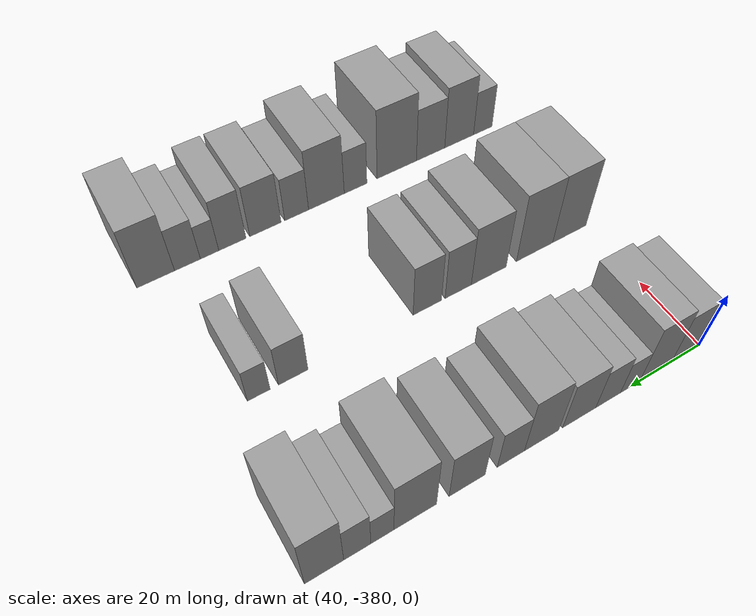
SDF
<sdf version="1.6">
 <world name="default">
  <model name="building_1">
   <static>1</static>
   <pose>50.0000 -375.8266 0 0.000000 0.000000 0.000000</pose>
   <link name="link">
    <pose>0 0 9.00 0 0 0</pose>
    <collision name="collision"><geometry><box><size>20.0000 8.3468 18.0000</size></box></geometry></collision>
    <visual name="visual">
     <cast_shadows>0</cast_shadows>
     <geometry><box><size>20.0000 8.3468 18.0000</size></box></geometry>
     <material>
      <script>
       <uri>model://grey_wall/materials/scripts</uri>
       <uri>model://grey_wall/materials/textures</uri>
       <name>vrc/grey_wall</name>
      </script>
     </material>
    </visual>
   </link>
  </model>
  <model name="building_2">
   <static>1</static>
   <pose>50.0000 -367.0918 0 0.000000 0.000000 0.000000</pose>
   <link name="link">
    <pose>0 0 10.50 0 0 0</pose>
    <collision name="collision"><geometry><box><size>20.0000 9.1228 21.0000</size></box></geometry></collision>
    <visual name="visual">
     <cast_shadows>0</cast_shadows>
     <geometry><box><size>20.0000 9.1228 21.0000</size></box></geometry>
     <material>
      <script>
       <uri>model://grey_wall/materials/scripts</uri>
       <uri>model://grey_wall/materials/textures</uri>
       <name>vrc/grey_wall</name>
      </script>
     </material>
    </visual>
   </link>
  </model>
  <model name="building_3">
   <static>1</static>
   <pose>50.0000 -359.8040 0 0.000000 0.000000 0.000000</pose>
   <link name="link">
    <pose>0 0 6.00 0 0 0</pose>
    <collision name="collision"><geometry><box><size>20.0000 5.4529 12.0000</size></box></geometry></collision>
    <visual name="visual">
     <cast_shadows>0</cast_shadows>
     <geometry><box><size>20.0000 5.4529 12.0000</size></box></geometry>
     <material>
      <script>
       <uri>model://grey_wall/materials/scripts</uri>
       <uri>model://grey_wall/materials/textures</uri>
       <name>vrc/grey_wall</name>
      </script>
     </material>
    </visual>
   </link>
  </model>
  <model name="building_4">
   <static>1</static>
   <pose>50.0000 -353.6769 0 0.000000 0.000000 0.000000</pose>
   <link name="link">
    <pose>0 0 7.50 0 0 0</pose>
    <collision name="collision"><geometry><box><size>20.0000 6.8014 15.0000</size></box></geometry></collision>
    <visual name="visual">
     <cast_shadows>0</cast_shadows>
     <geometry><box><size>20.0000 6.8014 15.0000</size></box></geometry>
     <material>
      <script>
       <uri>model://grey_wall/materials/scripts</uri>
       <uri>model://grey_wall/materials/textures</uri>
       <name>vrc/grey_wall</name>
      </script>
     </material>
    </visual>
   </link>
  </model>
  <model name="building_5">
   <static>1</static>
   <pose>50.0000 -345.8114 0 0.000000 0.000000 0.000000</pose>
   <link name="link">
    <pose>0 0 9.00 0 0 0</pose>
    <collision name="collision"><geometry><box><size>20.0000 8.9297 18.0000</size></box></geometry></collision>
    <visual name="visual">
     <cast_shadows>0</cast_shadows>
     <geometry><box><size>20.0000 8.9297 18.0000</size></box></geometry>
     <material>
      <script>
       <uri>model://grey_wall/materials/scripts</uri>
       <uri>model://grey_wall/materials/textures</uri>
       <name>vrc/grey_wall</name>
      </script>
     </material>
    </visual>
   </link>
  </model>
  <model name="building_6">
   <static>1</static>
   <pose>50.0000 -335.8831 0 0.000000 0.000000 0.000000</pose>
   <link name="link">
    <pose>0 0 10.50 0 0 0</pose>
    <collision name="collision"><geometry><box><size>20.0000 8.9269 21.0000</size></box></geometry></collision>
    <visual name="visual">
     <cast_shadows>0</cast_shadows>
     <geometry><box><size>20.0000 8.9269 21.0000</size></box></geometry>
     <material>
      <script>
       <uri>model://grey_wall/materials/scripts</uri>
       <uri>model://grey_wall/materials/textures</uri>
       <name>vrc/grey_wall</name>
      </script>
     </material>
    </visual>
   </link>
  </model>
  <model name="building_7">
   <static>1</static>
   <pose>50.0000 -327.9880 0 0.000000 0.000000 0.000000</pose>
   <link name="link">
    <pose>0 0 7.50 0 0 0</pose>
    <collision name="collision"><geometry><box><size>20.0000 6.8631 15.0000</size></box></geometry></collision>
    <visual name="visual">
     <cast_shadows>0</cast_shadows>
     <geometry><box><size>20.0000 6.8631 15.0000</size></box></geometry>
     <material>
      <script>
       <uri>model://grey_wall/materials/scripts</uri>
       <uri>model://grey_wall/materials/textures</uri>
       <name>vrc/grey_wall</name>
      </script>
     </material>
    </visual>
   </link>
  </model>
  <model name="building_8">
   <static>1</static>
   <pose>50.0000 -317.1710 0 0.000000 0.000000 0.000000</pose>
   <link name="link">
    <pose>0 0 9.00 0 0 0</pose>
    <collision name="collision"><geometry><box><size>20.0000 8.7710 18.0000</size></box></geometry></collision>
    <visual name="visual">
     <cast_shadows>0</cast_shadows>
     <geometry><box><size>20.0000 8.7710 18.0000</size></box></geometry>
     <material>
      <script>
       <uri>model://grey_wall/materials/scripts</uri>
       <uri>model://grey_wall/materials/textures</uri>
       <name>vrc/grey_wall</name>
      </script>
     </material>
    </visual>
   </link>
  </model>
  <model name="building_9">
   <static>1</static>
   <pose>50.0000 -304.8281 0 0.000000 0.000000 0.000000</pose>
   <link name="link">
    <pose>0 0 10.50 0 0 0</pose>
    <collision name="collision"><geometry><box><size>20.0000 9.9147 21.0000</size></box></geometry></collision>
    <visual name="visual">
     <cast_shadows>0</cast_shadows>
     <geometry><box><size>20.0000 9.9147 21.0000</size></box></geometry>
     <material>
      <script>
       <uri>model://grey_wall/materials/scripts</uri>
       <uri>model://grey_wall/materials/textures</uri>
       <name>vrc/grey_wall</name>
      </script>
     </material>
    </visual>
   </link>
  </model>
  <model name="building_10">
   <static>1</static>
   <pose>50.0000 -297.2527 0 0.000000 0.000000 0.000000</pose>
   <link name="link">
    <pose>0 0 6.00 0 0 0</pose>
    <collision name="collision"><geometry><box><size>20.0000 5.2360 12.0000</size></box></geometry></collision>
    <visual name="visual">
     <cast_shadows>0</cast_shadows>
     <geometry><box><size>20.0000 5.2360 12.0000</size></box></geometry>
     <material>
      <script>
       <uri>model://grey_wall/materials/scripts</uri>
       <uri>model://grey_wall/materials/textures</uri>
       <name>vrc/grey_wall</name>
      </script>
     </material>
    </visual>
   </link>
  </model>
  <model name="building_11">
   <static>1</static>
   <pose>50.0000 -291.6268 0 0.000000 0.000000 0.000000</pose>
   <link name="link">
    <pose>0 0 7.50 0 0 0</pose>
    <collision name="collision"><geometry><box><size>20.0000 6.0158 15.0000</size></box></geometry></collision>
    <visual name="visual">
     <cast_shadows>0</cast_shadows>
     <geometry><box><size>20.0000 6.0158 15.0000</size></box></geometry>
     <material>
      <script>
       <uri>model://grey_wall/materials/scripts</uri>
       <uri>model://grey_wall/materials/textures</uri>
       <name>vrc/grey_wall</name>
      </script>
     </material>
    </visual>
   </link>
  </model>
  <model name="building_12">
   <static>1</static>
   <pose>50.0000 -284.3805 0 0.000000 0.000000 0.000000</pose>
   <link name="link">
    <pose>0 0 10.50 0 0 0</pose>
    <collision name="collision"><geometry><box><size>20.0000 8.4769 21.0000</size></box></geometry></collision>
    <visual name="visual">
     <cast_shadows>0</cast_shadows>
     <geometry><box><size>20.0000 8.4769 21.0000</size></box></geometry>
     <material>
      <script>
       <uri>model://grey_wall/materials/scripts</uri>
       <uri>model://grey_wall/materials/textures</uri>
       <name>vrc/grey_wall</name>
      </script>
     </material>
    </visual>
   </link>
  </model>
  <model name="building_90">
   <static>1</static>
   <pose>90.0000 -374.8376 0 0.000000 0.000000 0.000000</pose>
   <link name="link">
    <pose>0 0 12.00 0 0 0</pose>
    <collision name="collision"><geometry><box><size>20.0000 10.3249 24.0000</size></box></geometry></collision>
    <visual name="visual">
     <cast_shadows>0</cast_shadows>
     <geometry><box><size>20.0000 10.3249 24.0000</size></box></geometry>
     <material>
      <script>
       <uri>model://grey_wall/materials/scripts</uri>
       <uri>model://grey_wall/materials/textures</uri>
       <name>vrc/grey_wall</name>
      </script>
     </material>
    </visual>
   </link>
  </model>
  <model name="building_91">
   <static>1</static>
   <pose>90.0000 -364.2230 0 0.000000 0.000000 0.000000</pose>
   <link name="link">
    <pose>0 0 12.00 0 0 0</pose>
    <collision name="collision"><geometry><box><size>20.0000 10.9042 24.0000</size></box></geometry></collision>
    <visual name="visual">
     <cast_shadows>0</cast_shadows>
     <geometry><box><size>20.0000 10.9042 24.0000</size></box></geometry>
     <material>
      <script>
       <uri>model://grey_wall/materials/scripts</uri>
       <uri>model://grey_wall/materials/textures</uri>
       <name>vrc/grey_wall</name>
      </script>
     </material>
    </visual>
   </link>
  </model>
  <model name="building_92">
   <static>1</static>
   <pose>90.0000 -350.7093 0 0.000000 0.000000 0.000000</pose>
   <link name="link">
    <pose>0 0 10.50 0 0 0</pose>
    <collision name="collision"><geometry><box><size>20.0000 10.1233 21.0000</size></box></geometry></collision>
    <visual name="visual">
     <cast_shadows>0</cast_shadows>
     <geometry><box><size>20.0000 10.1233 21.0000</size></box></geometry>
     <material>
      <script>
       <uri>model://grey_wall/materials/scripts</uri>
       <uri>model://grey_wall/materials/textures</uri>
       <name>vrc/grey_wall</name>
      </script>
     </material>
    </visual>
   </link>
  </model>
  <model name="building_93">
   <static>1</static>
   <pose>90.0000 -341.9770 0 0.000000 0.000000 0.000000</pose>
   <link name="link">
    <pose>0 0 9.00 0 0 0</pose>
    <collision name="collision"><geometry><box><size>20.0000 7.3413 18.0000</size></box></geometry></collision>
    <visual name="visual">
     <cast_shadows>0</cast_shadows>
     <geometry><box><size>20.0000 7.3413 18.0000</size></box></geometry>
     <material>
      <script>
       <uri>model://grey_wall/materials/scripts</uri>
       <uri>model://grey_wall/materials/textures</uri>
       <name>vrc/grey_wall</name>
      </script>
     </material>
    </visual>
   </link>
  </model>
  <model name="building_94">
   <static>1</static>
   <pose>90.0000 -333.4229 0 0.000000 0.000000 0.000000</pose>
   <link name="link">
    <pose>0 0 9.00 0 0 0</pose>
    <collision name="collision"><geometry><box><size>20.0000 7.7669 18.0000</size></box></geometry></collision>
    <visual name="visual">
     <cast_shadows>0</cast_shadows>
     <geometry><box><size>20.0000 7.7669 18.0000</size></box></geometry>
     <material>
      <script>
       <uri>model://grey_wall/materials/scripts</uri>
       <uri>model://grey_wall/materials/textures</uri>
       <name>vrc/grey_wall</name>
      </script>
     </material>
    </visual>
   </link>
  </model>
  <model name="building_95">
   <static>1</static>
   <pose>90.0000 -298.6699 0 0.000000 0.000000 0.000000</pose>
   <link name="link">
    <pose>0 0 7.50 0 0 0</pose>
    <collision name="collision"><geometry><box><size>20.0000 7.2464 15.0000</size></box></geometry></collision>
    <visual name="visual">
     <cast_shadows>0</cast_shadows>
     <geometry><box><size>20.0000 7.2464 15.0000</size></box></geometry>
     <material>
      <script>
       <uri>model://grey_wall/materials/scripts</uri>
       <uri>model://grey_wall/materials/textures</uri>
       <name>vrc/grey_wall</name>
      </script>
     </material>
    </visual>
   </link>
  </model>
  <model name="building_96">
   <static>1</static>
   <pose>90.0000 -290.3233 0 0.000000 0.000000 0.000000</pose>
   <link name="link">
    <pose>0 0 6.00 0 0 0</pose>
    <collision name="collision"><geometry><box><size>20.0000 5.4468 12.0000</size></box></geometry></collision>
    <visual name="visual">
     <cast_shadows>0</cast_shadows>
     <geometry><box><size>20.0000 5.4468 12.0000</size></box></geometry>
     <material>
      <script>
       <uri>model://grey_wall/materials/scripts</uri>
       <uri>model://grey_wall/materials/textures</uri>
       <name>vrc/grey_wall</name>
      </script>
     </material>
    </visual>
   </link>
  </model>
  <model name="building_170">
   <static>1</static>
   <pose>130.0000 -376.9606 0 0.000000 0.000000 0.000000</pose>
   <link name="link">
    <pose>0 0 7.50 0 0 0</pose>
    <collision name="collision"><geometry><box><size>20.0000 6.0787 15.0000</size></box></geometry></collision>
    <visual name="visual">
     <cast_shadows>0</cast_shadows>
     <geometry><box><size>20.0000 6.0787 15.0000</size></box></geometry>
     <material>
      <script>
       <uri>model://grey_wall/materials/scripts</uri>
       <uri>model://grey_wall/materials/textures</uri>
       <name>vrc/grey_wall</name>
      </script>
     </material>
    </visual>
   </link>
  </model>
  <model name="building_171">
   <static>1</static>
   <pose>130.0000 -369.2988 0 0.000000 0.000000 0.000000</pose>
   <link name="link">
    <pose>0 0 10.50 0 0 0</pose>
    <collision name="collision"><geometry><box><size>20.0000 9.2450 21.0000</size></box></geometry></collision>
    <visual name="visual">
     <cast_shadows>0</cast_shadows>
     <geometry><box><size>20.0000 9.2450 21.0000</size></box></geometry>
     <material>
      <script>
       <uri>model://grey_wall/materials/scripts</uri>
       <uri>model://grey_wall/materials/textures</uri>
       <name>vrc/grey_wall</name>
      </script>
     </material>
    </visual>
   </link>
  </model>
  <model name="building_172">
   <static>1</static>
   <pose>130.0000 -360.2333 0 0.000000 0.000000 0.000000</pose>
   <link name="link">
    <pose>0 0 9.00 0 0 0</pose>
    <collision name="collision"><geometry><box><size>20.0000 8.8860 18.0000</size></box></geometry></collision>
    <visual name="visual">
     <cast_shadows>0</cast_shadows>
     <geometry><box><size>20.0000 8.8860 18.0000</size></box></geometry>
     <material>
      <script>
       <uri>model://grey_wall/materials/scripts</uri>
       <uri>model://grey_wall/materials/textures</uri>
       <name>vrc/grey_wall</name>
      </script>
     </material>
    </visual>
   </link>
  </model>
  <model name="building_173">
   <static>1</static>
   <pose>130.0000 -349.7961 0 0.000000 0.000000 0.000000</pose>
   <link name="link">
    <pose>0 0 12.00 0 0 0</pose>
    <collision name="collision"><geometry><box><size>20.0000 11.9882 24.0000</size></box></geometry></collision>
    <visual name="visual">
     <cast_shadows>0</cast_shadows>
     <geometry><box><size>20.0000 11.9882 24.0000</size></box></geometry>
     <material>
      <script>
       <uri>model://grey_wall/materials/scripts</uri>
       <uri>model://grey_wall/materials/textures</uri>
       <name>vrc/grey_wall</name>
      </script>
     </material>
    </visual>
   </link>
  </model>
  <model name="building_174">
   <static>1</static>
   <pose>130.0000 -337.4627 0 0.000000 0.000000 0.000000</pose>
   <link name="link">
    <pose>0 0 7.50 0 0 0</pose>
    <collision name="collision"><geometry><box><size>20.0000 6.6787 15.0000</size></box></geometry></collision>
    <visual name="visual">
     <cast_shadows>0</cast_shadows>
     <geometry><box><size>20.0000 6.6787 15.0000</size></box></geometry>
     <material>
      <script>
       <uri>model://grey_wall/materials/scripts</uri>
       <uri>model://grey_wall/materials/textures</uri>
       <name>vrc/grey_wall</name>
      </script>
     </material>
    </visual>
   </link>
  </model>
  <model name="building_175">
   <static>1</static>
   <pose>130.0000 -328.9928 0 0.000000 0.000000 0.000000</pose>
   <link name="link">
    <pose>0 0 10.50 0 0 0</pose>
    <collision name="collision"><geometry><box><size>20.0000 10.2611 21.0000</size></box></geometry></collision>
    <visual name="visual">
     <cast_shadows>0</cast_shadows>
     <geometry><box><size>20.0000 10.2611 21.0000</size></box></geometry>
     <material>
      <script>
       <uri>model://grey_wall/materials/scripts</uri>
       <uri>model://grey_wall/materials/textures</uri>
       <name>vrc/grey_wall</name>
      </script>
     </material>
    </visual>
   </link>
  </model>
  <model name="building_176">
   <static>1</static>
   <pose>130.0000 -320.5102 0 0.000000 0.000000 0.000000</pose>
   <link name="link">
    <pose>0 0 7.50 0 0 0</pose>
    <collision name="collision"><geometry><box><size>20.0000 6.7041 15.0000</size></box></geometry></collision>
    <visual name="visual">
     <cast_shadows>0</cast_shadows>
     <geometry><box><size>20.0000 6.7041 15.0000</size></box></geometry>
     <material>
      <script>
       <uri>model://grey_wall/materials/scripts</uri>
       <uri>model://grey_wall/materials/textures</uri>
       <name>vrc/grey_wall</name>
      </script>
     </material>
    </visual>
   </link>
  </model>
  <model name="building_177">
   <static>1</static>
   <pose>130.0000 -311.8654 0 0.000000 0.000000 0.000000</pose>
   <link name="link">
    <pose>0 0 9.00 0 0 0</pose>
    <collision name="collision"><geometry><box><size>20.0000 8.5855 18.0000</size></box></geometry></collision>
    <visual name="visual">
     <cast_shadows>0</cast_shadows>
     <geometry><box><size>20.0000 8.5855 18.0000</size></box></geometry>
     <material>
      <script>
       <uri>model://grey_wall/materials/scripts</uri>
       <uri>model://grey_wall/materials/textures</uri>
       <name>vrc/grey_wall</name>
      </script>
     </material>
    </visual>
   </link>
  </model>
  <model name="building_178">
   <static>1</static>
   <pose>130.0000 -302.9330 0 0.000000 0.000000 0.000000</pose>
   <link name="link">
    <pose>0 0 9.00 0 0 0</pose>
    <collision name="collision"><geometry><box><size>20.0000 7.2794 18.0000</size></box></geometry></collision>
    <visual name="visual">
     <cast_shadows>0</cast_shadows>
     <geometry><box><size>20.0000 7.2794 18.0000</size></box></geometry>
     <material>
      <script>
       <uri>model://grey_wall/materials/scripts</uri>
       <uri>model://grey_wall/materials/textures</uri>
       <name>vrc/grey_wall</name>
      </script>
     </material>
    </visual>
   </link>
  </model>
  <model name="building_179">
   <static>1</static>
   <pose>130.0000 -296.8809 0 0.000000 0.000000 0.000000</pose>
   <link name="link">
    <pose>0 0 6.00 0 0 0</pose>
    <collision name="collision"><geometry><box><size>20.0000 4.8249 12.0000</size></box></geometry></collision>
    <visual name="visual">
     <cast_shadows>0</cast_shadows>
     <geometry><box><size>20.0000 4.8249 12.0000</size></box></geometry>
     <material>
      <script>
       <uri>model://grey_wall/materials/scripts</uri>
       <uri>model://grey_wall/materials/textures</uri>
       <name>vrc/grey_wall</name>
      </script>
     </material>
    </visual>
   </link>
  </model>
  <model name="building_180">
   <static>1</static>
   <pose>130.0000 -291.1378 0 0.000000 0.000000 0.000000</pose>
   <link name="link">
    <pose>0 0 7.50 0 0 0</pose>
    <collision name="collision"><geometry><box><size>20.0000 6.6611 15.0000</size></box></geometry></collision>
    <visual name="visual">
     <cast_shadows>0</cast_shadows>
     <geometry><box><size>20.0000 6.6611 15.0000</size></box></geometry>
     <material>
      <script>
       <uri>model://grey_wall/materials/scripts</uri>
       <uri>model://grey_wall/materials/textures</uri>
       <name>vrc/grey_wall</name>
      </script>
     </material>
    </visual>
   </link>
  </model>
  <model name="building_181">
   <static>1</static>
   <pose>130.0000 -283.0454 0 0.000000 0.000000 0.000000</pose>
   <link name="link">
    <pose>0 0 10.50 0 0 0</pose>
    <collision name="collision"><geometry><box><size>20.0000 9.5237 21.0000</size></box></geometry></collision>
    <visual name="visual">
     <cast_shadows>0</cast_shadows>
     <geometry><box><size>20.0000 9.5237 21.0000</size></box></geometry>
     <material>
      <script>
       <uri>model://grey_wall/materials/scripts</uri>
       <uri>model://grey_wall/materials/textures</uri>
       <name>vrc/grey_wall</name>
      </script>
     </material>
    </visual>
   </link>
  </model>
 </world>
</sdf>
